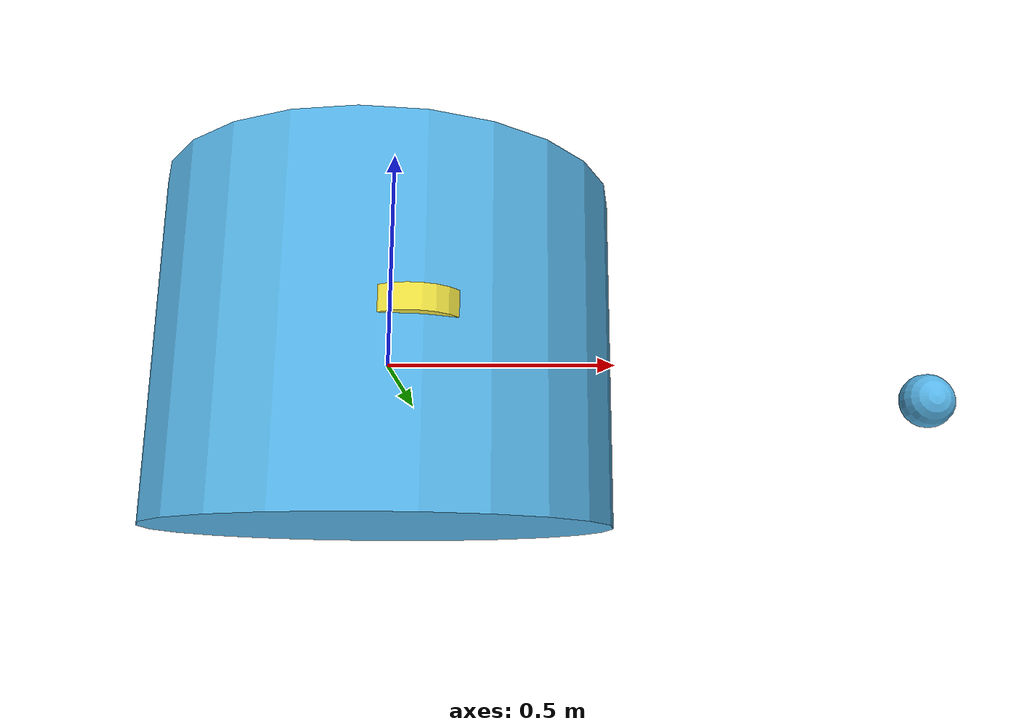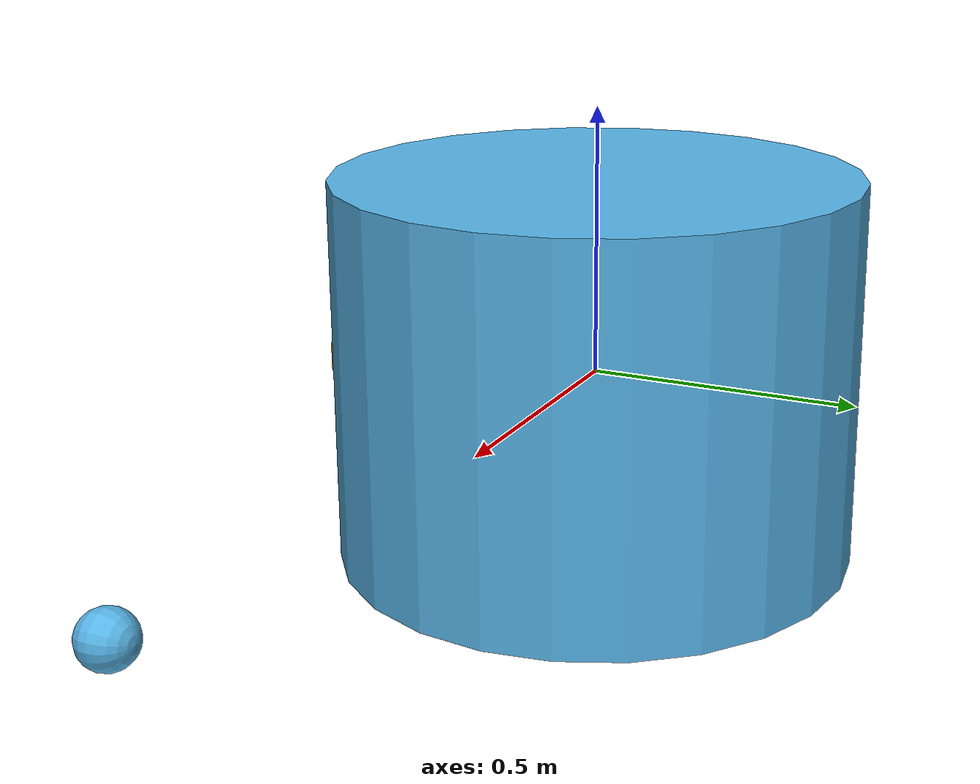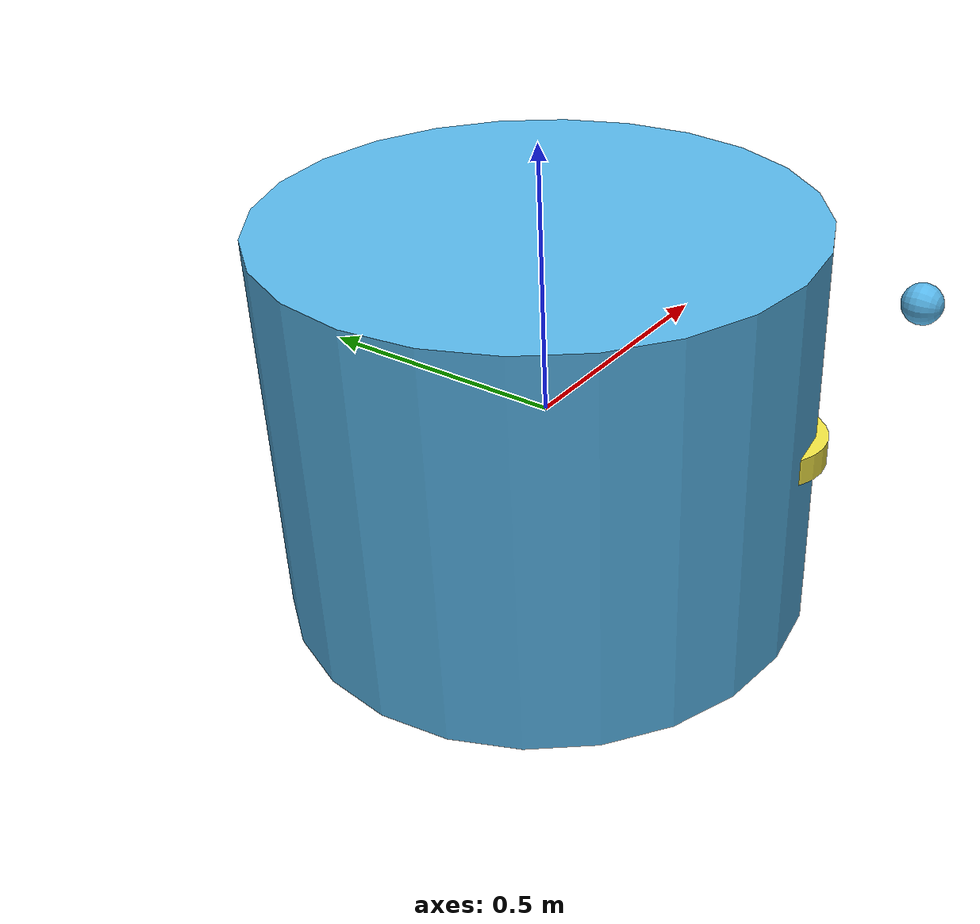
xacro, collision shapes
<?xml version='1.0'?>

<robot name="robot" xmlns:xacro="http://www.ros.org/wiki/xacro">

  <xacro:include filename="$(find robot_description)/urdf/common_properties.xacro" />
  <xacro:include filename="$(find robot_description)/urdf/romi.gazebo.xacro" />
  <xacro:include filename="$(find robot_description)/urdf/macros.xacro" />

	<link name="base_footprint"/>

    <joint name="base_joint" type="fixed">
      <parent link="base_footprint"/>
      <child link="chassis"/>
      <origin xyz="0.0 0.0 0.010" rpy="0 0 0"/>
    </joint>

  <link name='chassis'>
    <pose>-1.3 -0.8 -0.88 1.57 0 1.65</pose>

    <inertial>
      <mass value="10.0"/>
      <origin xyz="0 0 0" rpy="1.57 0 1.57"/>
      <inertia
          ixx="0.5" ixy="0" ixz="0"
          iyy="1.0" iyz="0"
          izz="0.1"
      />
    </inertial>

    <collision name='collision'>
      <geometry>
        <cylinder length="0.73" radius="0.49"/>
      </geometry>
    </collision>

    <visual name='chassis_visual'>

      <origin xyz="-1.3 -0.8 -0.88" rpy="1.57 0 1.65"/>
      <geometry>
        <mesh filename="package://robot_description/meshes/chassis.stl" scale="0.01 0.01 0.01"/>
      </geometry>
    </visual>

    <collision name='caster_collision'>
       <origin xyz="1.05 -0.32 -0.15" rpy="-1.57 0 0"/>
      <geometry>
        <sphere radius="0.05"/>
      </geometry>
      <surface>
        <friction>
          <ode>
            <mu>0</mu>
            <mu2>0</mu2>
            <slip1>1.0</slip1>
            <slip2>1.0</slip2>
          </ode>
        </friction>
      </surface>
    </collision>

    <visual name='caster_visual'>
      <origin xyz="1.05 -0.32 -0.15" rpy="-1.57 0 0"/>
      <geometry>
       <mesh filename="package://robot_description/meshes/front-caster.stl" scale="0.01 0.01 0.01"/>
      </geometry>
    </visual>
  </link>

  <joint type="continuous" name="left_wheel_hinge">
    <origin xyz="0.1 -0.2 0" rpy="0 0 0"/>
    <child link="left_wheel"/>
    <parent link="chassis"/>
    <axis xyz="0 1 0" rpy="0 0 0"/>
    <limit effort="100" velocity="100"/>
    <joint_properties damping="0.0" friction="0.0"/>
  </joint>

  <link name="left_wheel">
    <!--origin xyz="0.1 0.13 0.1" rpy="0 1.5707 1.5707"/-->
    <collision name="collision">
      <origin xyz="0 0 0" rpy="0 0 1.57"/>
      <geometry>
        <cylinder radius="0.1" length="0.05"/>
      </geometry>
    </collision>

    <visual name="left_wheel_visual">
      <origin xyz="0 0 0" rpy="0 0 1.57"/>
      <geometry>
         <mesh filename="package://robot_description/meshes/wheel.stl" scale="0.01 0.01 0.01"/>
      </geometry>
    </visual>

    <inertial>
      <origin xyz="0 0 0" rpy="0 0 1.57"/>
      <mass value="5"/>
      <cylinder_inertia m="5" r="0.1" h="0.05"/>
      <inertia
        ixx="1.0" ixy="0.0" ixz="0.0"
        iyy="1.0" iyz="0.0"
        izz="1.0"/>
    </inertial>
  </link>

  <joint type="continuous" name="right_wheel_hinge">
    <origin xyz="0.1 -0.4 0" rpy="0 0 0"/>
    <child link="right_wheel"/>
    <parent link="chassis"/>
    <axis xyz="0 1 0" rpy="0 0 0"/>
    <limit effort="100" velocity="100"/>
    <joint_properties damping="0.0" friction="0.0"/>
  </joint>

  <link name="right_wheel">
    <!--origin xyz="0.1 -0.13 0.1" rpy="0 1.5707 1.5707"/-->
    <collision name="collision">
      <origin xyz="0 0 0" rpy="0 0 1.57"/>
      <geometry>
        <cylinder radius="0.1" length="0.05"/>
      </geometry>
    </collision>

    <visual name="right_wheel_visual">
      <origin xyz="0 0 0" rpy="0 0 1.57"/>
      <geometry>
         <mesh filename="package://robot_description/meshes/wheel.stl" scale="0.01 0.01 0.01"/>
      </geometry>
    </visual>

    <inertial>
      <origin xyz="0 0 0" rpy="0 0 1.57"/>
      <mass value="5"/>
      <cylinder_inertia m="5" r="0.1" h="0.05"/>
      <inertia
        ixx="1.0" ixy="0.0" ixz="0.0"
        iyy="1.0" iyz="0.0"
        izz="1.0"/>
    </inertial>
  </link>

</robot>
